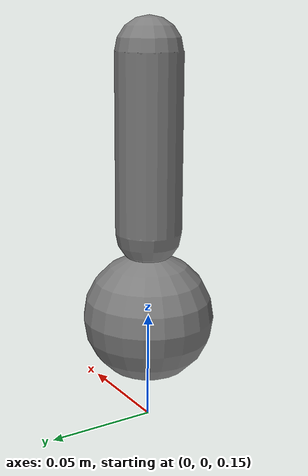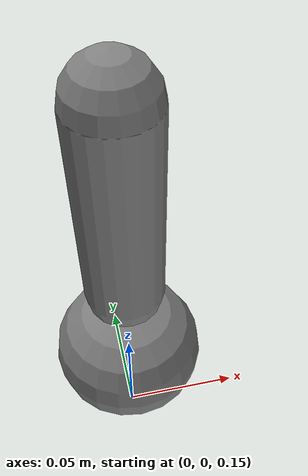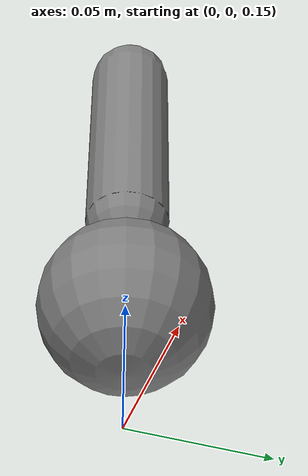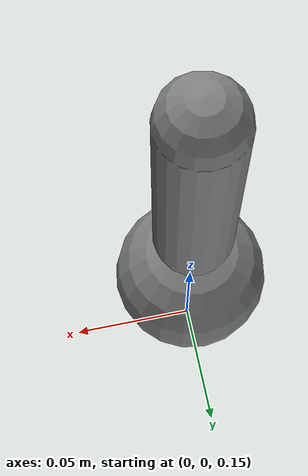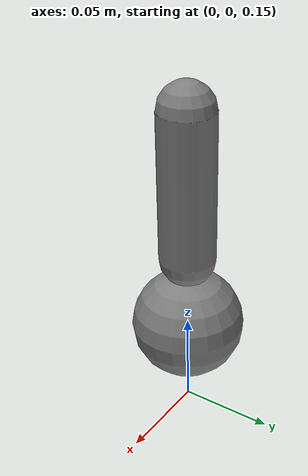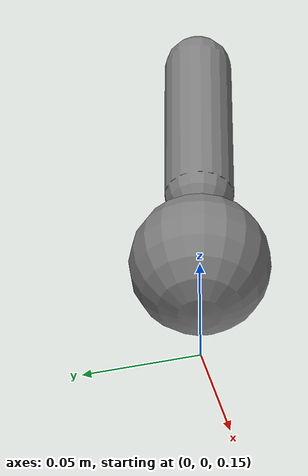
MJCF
<mujoco model="ball_joint">
  <option timestep="0.002"/>
  <worldbody>
    <body name="base" pos="0 0 0.2">
      <geom type="sphere" size="0.03" mass="0.2"/>
      <body name="link" pos="0 0 0.08">
        <joint name="ball" type="ball"/>
        <geom type="capsule" size="0.015 0.04" mass="0.1"/>
      </body>
    </body>
  </worldbody>
  <actuator>
    <motor name="act" joint="ball" ctrlrange="-1 1"/>
  </actuator>
</mujoco>
